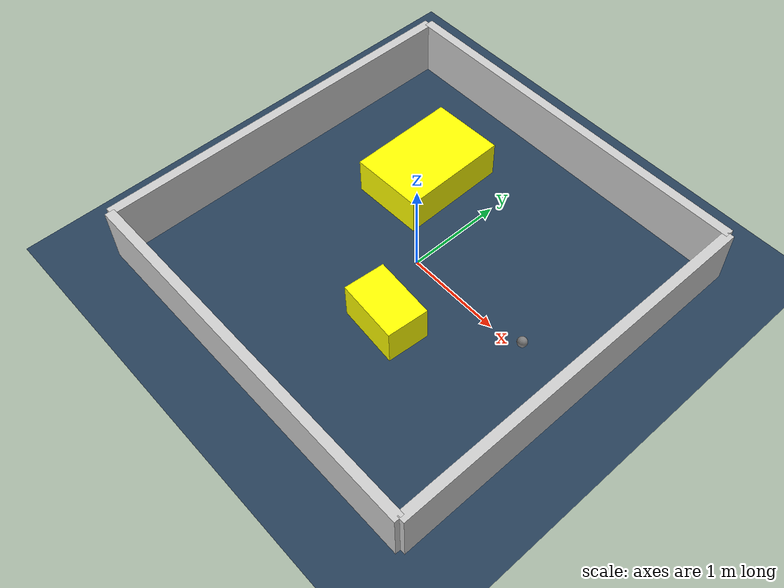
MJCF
<?xml version="1.0" ?>
<mujoco model="generated_environment">
  <option timestep="0.01" integrator="RK4" cone="elliptic"/>
  <default>
    <geom density="1"/>
  </default>
  <asset>
    <texture builtin="gradient" height="3072" rgb1="0.3 0.5 0.7" rgb2="0 0 0" type="skybox" width="512"/>
    <texture builtin="checker" height="300" mark="edge" markrgb="0.8 0.8 0.8" name="groundplane" rgb1="0.2 0.3 0.4" rgb2="0.1 0.2 0.3" type="2d" width="300"/>
    <material name="groundplane" reflectance="0.2" texrepeat="5 5" texture="groundplane" texuniform="true"/>
    <material name="robot" rgba="0.0 1.0 0.0 1"/>
  </asset>
  <worldbody>
    <light dir="0 0 -1" directional="true" pos="0 0 1.5"/>
    <geom condim="4" friction="1.0 0.005 0.001" material="groundplane" name="floor" size="0 0 0.05" type="plane"/>
    <body name="walls">
      <geom name="wall_1" condim="4" pos="-2.0 0.0 0.3" rgba="0.800000011920929 0.800000011920929 0.800000011920929 1.0" size="0.05 2.0 0.3" type="box"/>
      <geom name="wall_2" condim="4" pos="2.0 0.0 0.3" rgba="0.800000011920929 0.800000011920929 0.800000011920929 1.0" size="0.05 2.0 0.3" type="box"/>
      <geom name="wall_3" condim="4" pos="0.0 -2.0 0.3" rgba="0.800000011920929 0.800000011920929 0.800000011920929 1.0" size="2.0 0.05 0.3" type="box"/>
      <geom name="wall_4" condim="4" pos="0.0 2.0 0.3" rgba="0.800000011920929 0.800000011920929 0.800000011920929 1.0" size="2.0 0.05 0.3" type="box"/>
    </body>
    <body name="robot">
      <joint name="joint_x" type="slide" pos="0 0 0" axis="1 0 0"/>
      <joint name="joint_y" type="slide" pos="0 0 0" axis="0 1 0"/>
      <geom name="robot" type="sphere" pos="1.382910526034919 -0.00926622654602749 0.2" size="0.05" mass="5." friction="1.0 0.005 0.0001" condim="4"/>
      <site name="sensor_ball"/>
    </body>
    <body name="obstacle_1_movable">
      <geom name="obstacle_1_movable" condim="4" pos="-0.7078262177556796 0.7925447553871006 0.2" euler="0 0 271.3224069669173" friction="1.0 0.005 0.001" rgba="1 1 0 1" size="0.5636447839752916 0.38158782943542424 0.2" type="box" mass="0.1"/>
      <joint type="free"/>
    </body>
    <body name="obstacle_2_movable">
      <geom name="obstacle_2_movable" condim="4" pos="0.33891561015250415 -0.6818770270077581 0.2" euler="0 0 265.4921990722337" friction="1.0 0.005 0.001" rgba="1 1 0 1" size="0.21374358168335228 0.32616799562363924 0.2" type="box" mass="0.1"/>
      <joint type="free"/>
    </body>
  </worldbody>
  <actuator>
    <motor name="actuator_x" joint="joint_x" gear="1" ctrlrange="-1 1"/>
    <motor name="actuator_y" joint="joint_y" gear="1" ctrlrange="-1 1"/>
  </actuator>
</mujoco>
